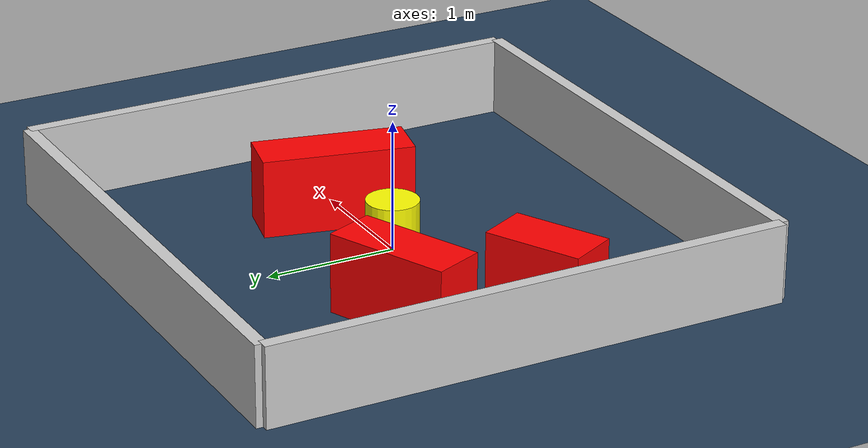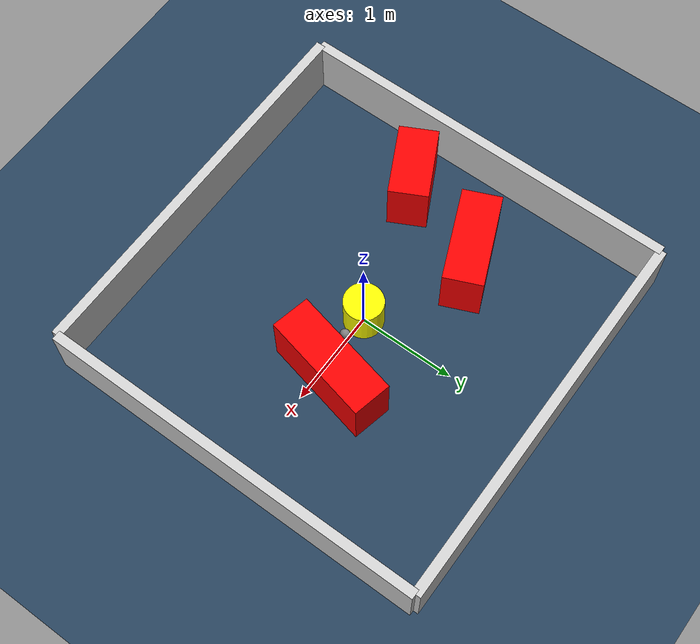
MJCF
<?xml version="1.0" ?>
<mujoco model="generated_environment">
  <option timestep="0.01" integrator="RK4" cone="elliptic"/>
  <default>
    <geom density="1"/>
  </default>
  <asset>
    <texture builtin="gradient" height="3072" rgb1="0.3 0.5 0.7" rgb2="0 0 0" type="skybox" width="512"/>
    <texture builtin="checker" height="300" mark="edge" markrgb="0.8 0.8 0.8" name="groundplane" rgb1="0.2 0.3 0.4" rgb2="0.1 0.2 0.3" type="2d" width="300"/>
    <material name="groundplane" reflectance="0.2" texrepeat="5 5" texture="groundplane" texuniform="true"/>
    <material name="robot" rgba="0.0 1.0 0.0 1"/>
  </asset>
  <worldbody>
    <light dir="0 0 -1" directional="true" pos="0 0 1.5"/>
    <geom condim="4" friction="1.0 0.005 0.001" material="groundplane" name="floor" size="0 0 0.05" type="plane"/>
    <body name="walls">
      <geom name="wall_1" condim="4" pos="-2.0 0.0 0.3" rgba="0.800000011920929 0.800000011920929 0.800000011920929 1.0" size="0.05 2.0 0.3" type="box"/>
      <geom name="wall_2" condim="4" pos="2.0 0.0 0.3" rgba="0.800000011920929 0.800000011920929 0.800000011920929 1.0" size="0.05 2.0 0.3" type="box"/>
      <geom name="wall_3" condim="4" pos="0.0 -2.0 0.3" rgba="0.800000011920929 0.800000011920929 0.800000011920929 1.0" size="2.0 0.05 0.3" type="box"/>
      <geom name="wall_4" condim="4" pos="0.0 2.0 0.3" rgba="0.800000011920929 0.800000011920929 0.800000011920929 1.0" size="2.0 0.05 0.3" type="box"/>
    </body>
    <body name="robot">
      <joint name="joint_x" type="slide" pos="0 0 0" axis="1 0 0"/>
      <joint name="joint_y" type="slide" pos="0 0 0" axis="0 1 0"/>
      <geom name="robot" type="sphere" pos="0.3 0.0 0.2" size="0.05" mass="5." friction="1.0 0.005 0.0001" condim="4" rgba="0.5 0.5 0.5 1.0"/>
      <site name="sensor_ball"/>
    </body>
    <body name="obstacle_movable_1">
      <geom name="obstacle_movable_1" condim="4" pos="0.0 0.0 0.2" euler="0 0 0.0" friction="1.0 0.005 0.001" rgba="1.0 1.0 0.0 1.0" size="0.2 0.2 0.0" type="cylinder" mass="0.1"/>
      <joint type="free"/>
    </body>
    <body name="obstacle_2_static">
      <geom name="obstacle_2_static" condim="4" pos="0.6867959790593776 0.13239607296446865 0.3" euler="0 0 77.31907335779782" friction="1.0 0.005 0.001" rgba="1 0 0 1" size="0.5736996487325952 0.2 0.3" type="box"/>
    </body>
    <body name="obstacle_3_static">
      <geom name="obstacle_3_static" condim="4" pos="-1.076194926353483 0.4857511802147483 0.3" euler="0 0 23.110317289267858" friction="1.0 0.005 0.001" rgba="1 0 0 1" size="0.4863918929141987 0.2 0.3" type="box"/>
    </body>
    <body name="obstacle_4_static">
      <geom name="obstacle_4_static" condim="4" pos="-1.4280773410625573 -0.44566001598890637 0.3" euler="0 0 27.025435165131757" friction="1.0 0.005 0.001" rgba="1 0 0 1" size="0.3750461928967055 0.2 0.3" type="box"/>
    </body>
  </worldbody>
  <actuator>
    <motor name="actuator_x" joint="joint_x" gear="1" ctrlrange="-1 1"/>
    <motor name="actuator_y" joint="joint_y" gear="1" ctrlrange="-1 1"/>
  </actuator>
</mujoco>
